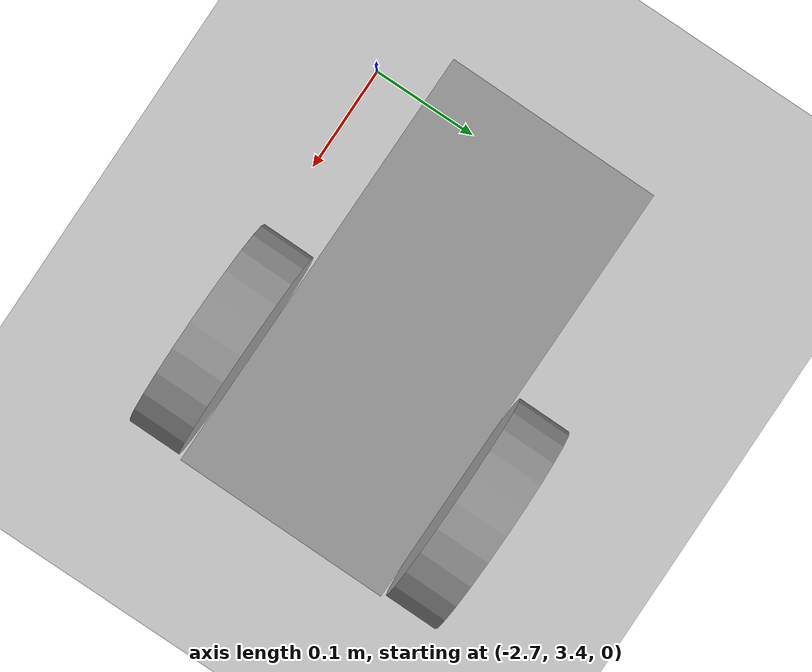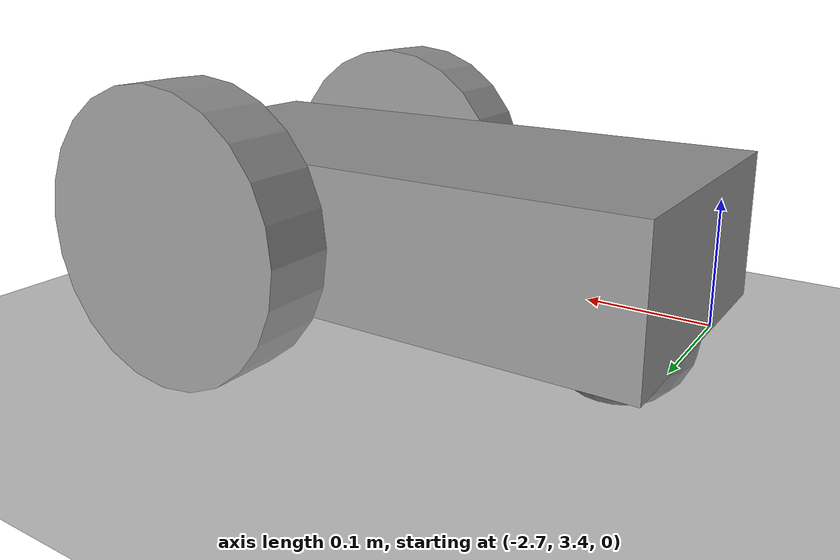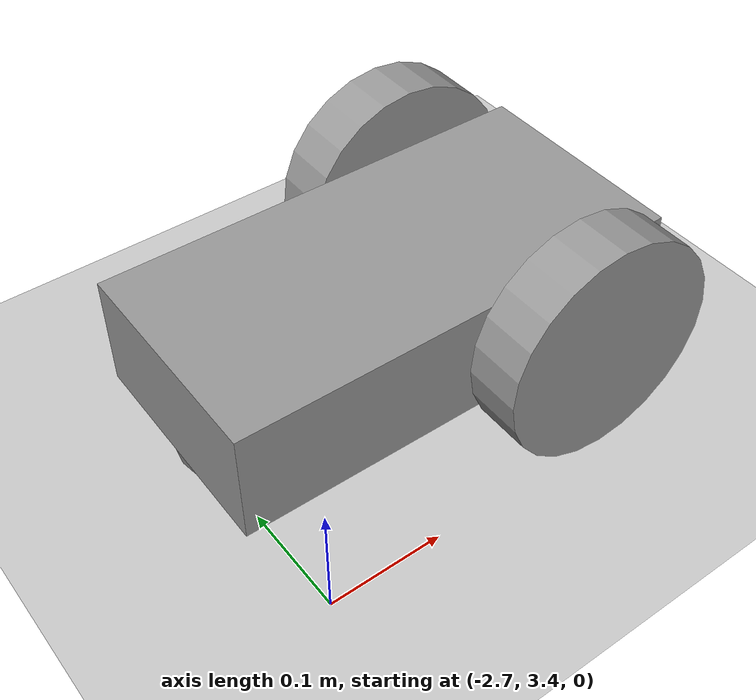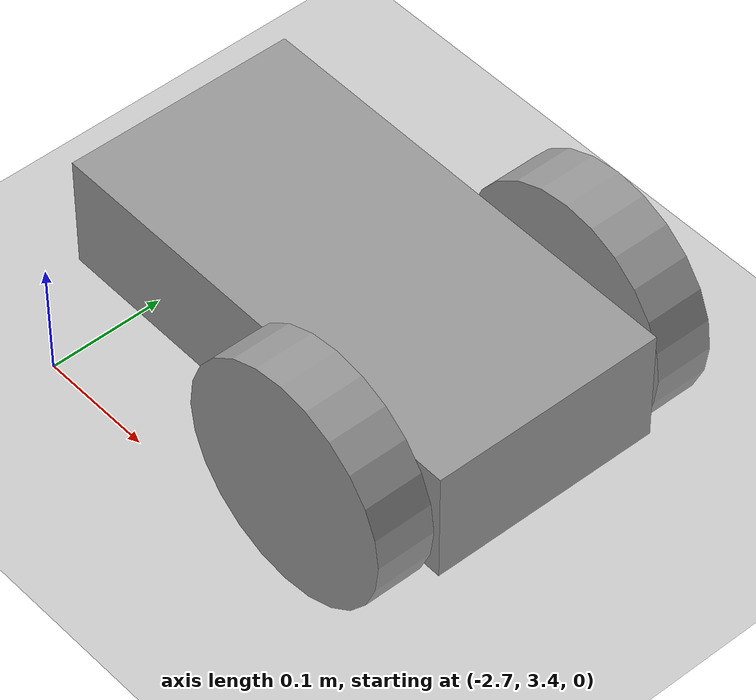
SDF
<sdf version="1.6">
 <world name="default">
  <model name="ground_plane">
   <static>1</static>
   <link name="link">
    <collision name="collision">
     <geometry><plane><normal>0 0 1</normal><size>100 100</size></plane></geometry>
     <surface>
      <contact><collide_bitmask>65535</collide_bitmask></contact>
      <friction><ode><mu>100</mu><mu2>50</mu2></ode></friction>
     </surface>
    </collision>
    <visual name="visual">
     <cast_shadows>0</cast_shadows>
     <geometry><plane><normal>0 0 1</normal><size>100 100</size></plane></geometry>
     <material>
      <script><uri>file://media/materials/scripts/gazebo.material</uri><name>Gazebo/Grey</name></script>
     </material>
    </visual>
   </link>
  </model>
  <model name="robot">
   <link name="link_0">
    <pose>-0.066667 0 0 0 -0 0</pose>
    <inertial>
     <mass>1</mass>
     <inertia>
      <ixx>0.166667</ixx>
      <ixy>0</ixy>
      <ixz>0</ixz>
      <iyy>0.166667</iyy>
      <iyz>0</iyz>
      <izz>0.166667</izz>
     </inertia>
    </inertial>
    <visual name="ModelPreview_0::link_0::visual_1">
     <pose>-0.15 0 -0.05 0 -0 0</pose>
     <geometry><sphere><radius>0.05</radius></sphere></geometry>
     <material>
      <lighting>1</lighting>
      <script><uri>file://media/materials/scripts/gazebo.material</uri><name>Gazebo/Grey</name></script>
      <shader type="pixel"><normal_map>__default__</normal_map></shader>
      <ambient>0.3 0.3 0.3 1</ambient>
      <diffuse>0.7 0.7 0.7 1</diffuse>
      <specular>0.01 0.01 0.01 1</specular>
      <emissive>0 0 0 1</emissive>
     </material>
    </visual>
    <visual name="visual">
     <geometry><box><size>0.4 0.2 0.1</size></box></geometry>
     <material>
      <lighting>1</lighting>
      <script><uri>file://media/materials/scripts/gazebo.material</uri><name>Gazebo/Grey</name></script>
      <shader type="pixel"><normal_map>__default__</normal_map></shader>
      <ambient>0.3 0.3 0.3 1</ambient>
      <diffuse>0.7 0.7 0.7 1</diffuse>
      <specular>0.01 0.01 0.01 1</specular>
      <emissive>0 0 0 1</emissive>
     </material>
    </visual>
    <collision name="collision_1">
     <pose>-0.15 0 -0.05 0 -0 0</pose>
     <geometry><sphere><radius>0.05</radius></sphere></geometry>
     <surface>
      <friction>
       <ode><mu>0</mu><mu2>0</mu2><fdir1>0 0 0</fdir1><slip1>1</slip1><slip2>1</slip2></ode>
       <torsional>
        <coefficient>1</coefficient>
        <patch_radius>0</patch_radius>
        <surface_radius>0</surface_radius>
        <use_patch_radius>1</use_patch_radius>
        <ode><slip>0</slip></ode>
       </torsional>
      </friction>
      <bounce><restitution_coefficient>0</restitution_coefficient><threshold>1e+06</threshold></bounce>
      <contact>
       <collide_without_contact>0</collide_without_contact>
       <collide_without_contact_bitmask>1</collide_without_contact_bitmask>
       <collide_bitmask>1</collide_bitmask>
       <ode>
        <soft_cfm>0</soft_cfm>
        <soft_erp>0.2</soft_erp>
        <kp>1e+13</kp>
        <kd>1</kd>
        <max_vel>0.01</max_vel>
        <min_depth>0</min_depth>
       </ode>
       <bullet>
        <split_impulse>1</split_impulse>
        <split_impulse_penetration_threshold>-0.01</split_impulse_penetration_threshold>
        <soft_cfm>0</soft_cfm>
        <soft_erp>0.2</soft_erp>
        <kp>1e+13</kp>
        <kd>1</kd>
       </bullet>
      </contact>
     </surface>
    </collision>
    <collision name="collision">
     <geometry><box><size>0.4 0.2 0.1</size></box></geometry>
     <surface>
      <friction>
       <ode><mu>1</mu><mu2>1</mu2><fdir1>0 0 0</fdir1><slip1>0</slip1><slip2>0</slip2></ode>
       <torsional>
        <coefficient>1</coefficient>
        <patch_radius>0</patch_radius>
        <surface_radius>0</surface_radius>
        <use_patch_radius>1</use_patch_radius>
        <ode><slip>0</slip></ode>
       </torsional>
      </friction>
      <bounce><restitution_coefficient>0</restitution_coefficient><threshold>1e+06</threshold></bounce>
      <contact>
       <collide_without_contact>0</collide_without_contact>
       <collide_without_contact_bitmask>1</collide_without_contact_bitmask>
       <collide_bitmask>1</collide_bitmask>
       <ode>
        <soft_cfm>0</soft_cfm>
        <soft_erp>0.2</soft_erp>
        <kp>1e+13</kp>
        <kd>1</kd>
        <max_vel>0.01</max_vel>
        <min_depth>0</min_depth>
       </ode>
       <bullet>
        <split_impulse>1</split_impulse>
        <split_impulse_penetration_threshold>-0.01</split_impulse_penetration_threshold>
        <soft_cfm>0</soft_cfm>
        <soft_erp>0.2</soft_erp>
        <kp>1e+13</kp>
        <kd>1</kd>
       </bullet>
      </contact>
     </surface>
    </collision>
   </link>
   <link name="link_2">
    <pose>0.033333 0.13 0 -0.000572 1.5707 1.57013</pose>
    <inertial>
     <mass>1</mass>
     <inertia><ixx>0.145833</ixx><ixy>0</ixy><ixz>0</ixz><iyy>0.145833</iyy><iyz>0</iyz><izz>0.125</izz></inertia>
    </inertial>
    <visual name="visual">
     <geometry><cylinder><radius>0.1</radius><length>0.05</length></cylinder></geometry>
     <material>
      <lighting>1</lighting>
      <script><uri>file://media/materials/scripts/gazebo.material</uri><name>Gazebo/Grey</name></script>
      <shader type="pixel"><normal_map>__default__</normal_map></shader>
      <ambient>0.3 0.3 0.3 1</ambient>
      <diffuse>0.7 0.7 0.7 1</diffuse>
      <specular>0.01 0.01 0.01 1</specular>
      <emissive>0 0 0 1</emissive>
     </material>
    </visual>
    <collision name="collision">
     <geometry><cylinder><radius>0.1</radius><length>0.05</length></cylinder></geometry>
     <surface>
      <friction>
       <ode><mu>1</mu><mu2>1</mu2><fdir1>0 0 0</fdir1><slip1>0</slip1><slip2>0</slip2></ode>
       <torsional>
        <coefficient>1</coefficient>
        <patch_radius>0</patch_radius>
        <surface_radius>0</surface_radius>
        <use_patch_radius>1</use_patch_radius>
        <ode><slip>0</slip></ode>
       </torsional>
      </friction>
      <bounce><restitution_coefficient>0</restitution_coefficient><threshold>1e+06</threshold></bounce>
      <contact>
       <collide_without_contact>0</collide_without_contact>
       <collide_without_contact_bitmask>1</collide_without_contact_bitmask>
       <collide_bitmask>1</collide_bitmask>
       <ode>
        <soft_cfm>0</soft_cfm>
        <soft_erp>0.2</soft_erp>
        <kp>1e+13</kp>
        <kd>1</kd>
        <max_vel>0.01</max_vel>
        <min_depth>0</min_depth>
       </ode>
       <bullet>
        <split_impulse>1</split_impulse>
        <split_impulse_penetration_threshold>-0.01</split_impulse_penetration_threshold>
        <soft_cfm>0</soft_cfm>
        <soft_erp>0.2</soft_erp>
        <kp>1e+13</kp>
        <kd>1</kd>
       </bullet>
      </contact>
     </surface>
    </collision>
   </link>
   <link name="link_3">
    <pose>0.033333 -0.13 0 4.8e-05 1.5707 1.57075</pose>
    <inertial>
     <mass>1</mass>
     <inertia><ixx>0.145833</ixx><ixy>0</ixy><ixz>0</ixz><iyy>0.145833</iyy><iyz>0</iyz><izz>0.125</izz></inertia>
    </inertial>
    <visual name="visual">
     <geometry><cylinder><radius>0.1</radius><length>0.05</length></cylinder></geometry>
     <material>
      <lighting>1</lighting>
      <script><uri>file://media/materials/scripts/gazebo.material</uri><name>Gazebo/Grey</name></script>
      <shader type="pixel"><normal_map>__default__</normal_map></shader>
      <ambient>0.3 0.3 0.3 1</ambient>
      <diffuse>0.7 0.7 0.7 1</diffuse>
      <specular>0.01 0.01 0.01 1</specular>
      <emissive>0 0 0 1</emissive>
     </material>
    </visual>
    <collision name="collision">
     <geometry><cylinder><radius>0.1</radius><length>0.05</length></cylinder></geometry>
     <surface>
      <friction>
       <ode><mu>1</mu><mu2>1</mu2><fdir1>0 0 0</fdir1><slip1>0</slip1><slip2>0</slip2></ode>
       <torsional>
        <coefficient>1</coefficient>
        <patch_radius>0</patch_radius>
        <surface_radius>0</surface_radius>
        <use_patch_radius>1</use_patch_radius>
        <ode><slip>0</slip></ode>
       </torsional>
      </friction>
      <bounce><restitution_coefficient>0</restitution_coefficient><threshold>1e+06</threshold></bounce>
      <contact>
       <collide_without_contact>0</collide_without_contact>
       <collide_without_contact_bitmask>1</collide_without_contact_bitmask>
       <collide_bitmask>1</collide_bitmask>
       <ode>
        <soft_cfm>0</soft_cfm>
        <soft_erp>0.2</soft_erp>
        <kp>1e+13</kp>
        <kd>1</kd>
        <max_vel>0.01</max_vel>
        <min_depth>0</min_depth>
       </ode>
       <bullet>
        <split_impulse>1</split_impulse>
        <split_impulse_penetration_threshold>-0.01</split_impulse_penetration_threshold>
        <soft_cfm>0</soft_cfm>
        <soft_erp>0.2</soft_erp>
        <kp>1e+13</kp>
        <kd>1</kd>
       </bullet>
      </contact>
     </surface>
    </collision>
   </link>
   <joint name="link_0_JOINT_1" type="revolute">
    <parent>link_0</parent>
    <child>link_3</child>
    <pose>0 0 0.03 0 -0 0</pose>
    <axis>
     <xyz>0 1 0</xyz>
     <use_parent_model_frame>0</use_parent_model_frame>
     <limit>
      <lower>-1.79769e+308</lower>
      <upper>1.79769e+308</upper>
      <effort>-1</effort>
      <velocity>-1</velocity>
     </limit>
     <dynamics>
      <spring_reference>0</spring_reference>
      <spring_stiffness>0</spring_stiffness>
      <damping>0</damping>
     </dynamics>
    </axis>
    <physics>
     <ode><limit><cfm>0</cfm><erp>0.2</erp></limit><suspension><cfm>0</cfm><erp>0.2</erp></suspension></ode>
    </physics>
   </joint>
   <joint name="link_0_JOINT_2" type="revolute">
    <parent>link_0</parent>
    <child>link_2</child>
    <pose>0 0 -0.03 0 -0 0</pose>
    <axis>
     <xyz>0 1 0</xyz>
     <use_parent_model_frame>0</use_parent_model_frame>
     <limit>
      <lower>-1.79769e+308</lower>
      <upper>1.79769e+308</upper>
      <effort>-1</effort>
      <velocity>-1</velocity>
     </limit>
     <dynamics>
      <spring_reference>0</spring_reference>
      <spring_stiffness>0</spring_stiffness>
      <damping>0</damping>
     </dynamics>
    </axis>
    <physics>
     <ode><limit><cfm>0</cfm><erp>0.2</erp></limit><suspension><cfm>0</cfm><erp>0.2</erp></suspension></ode>
    </physics>
   </joint>
   <static>0</static>
   <pose>-2.46596 3.55198 0.1 3e-05 0 -0.008747</pose>
  </model>
 </world>
</sdf>
